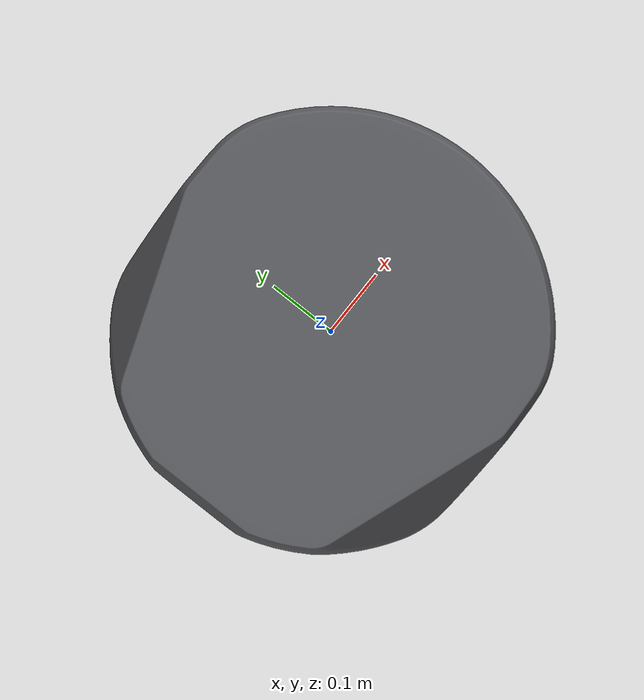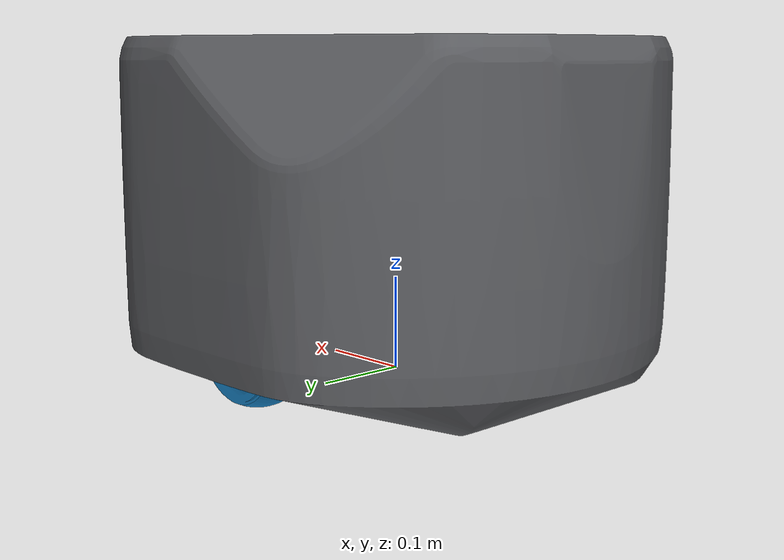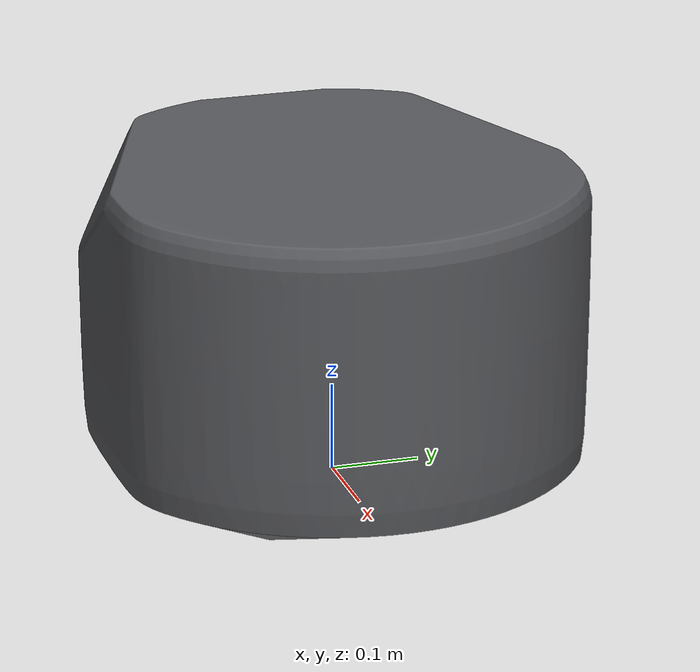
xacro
<?xml version="1.0"?>
<robot name="fetch_base" xmlns:xacro="http://www.ros.org/wiki/xacro">
  <xacro:include filename="$(find fetch_description)/robots/materials.xacro" />
  <xacro:include filename="$(find fetch_description)/robots/inertials.xacro" />

  <property name="pi" value="3.1415926535897931" />
  <property name="zeroes" value="0 0 0" />
  <property name="base_mass" value="70.1294"/>
  <property name="wheel_mass" value="4.3542"/>

 <link name="base_link">
   <xacro:base_inertial/>
    <visual>
      <origin rpy="${zeroes}" xyz="${zeroes}" />
      <geometry>
        <mesh filename="package://fetch_description/meshes/base_link.dae" />
      </geometry>
      <material name="base_color"/>
    </visual>
    <collision>
      <origin rpy="${zeroes}" xyz="${zeroes}" />
      <geometry>
        <mesh filename="package://fetch_description/meshes/base_link_collision.STL" />
      </geometry>
    </collision>
  </link>

 <xacro:macro name="wheels" params="prefix wheel_position parent">
    <link name="${prefix}_wheel_link">
      <xacro:wheel_inertial/>
      <visual>
        <origin xyz="${zeroes}" rpy="${zeroes}" />
        <geometry>
          <mesh filename="package://fetch_description/meshes/${prefix}_wheel_link.STL" />
        </geometry>
        <material name="wheel_color" />
      </visual>
    </link>
    <joint name="${prefix}_wheel_joint" type="continuous">
    <origin rpy="-6.123E-17 0 0" xyz="${wheel_position}" />
    <parent link="${parent}" />
    <child link="${prefix}_wheel_link" />
    <axis xyz="0 1 0" />
  <limit effort="8.85" velocity="17.4" /></joint>
  </xacro:macro>

  <wheels prefix="r"  parent="base_link" wheel_position="0.0012914 -0.18738 0.055325"/>
  <wheels prefix="l"  parent="base_link" wheel_position="0.0012914 0.18738 0.055325"/>

</robot>

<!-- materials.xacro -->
<robot>
  <material name="base_color">
    <color rgba="0.356 0.361 0.376 1" />
  </material>
  <material name="wheel_color">
    <color rgba="0.086 0.506 0.767 1" />
  </material>
  <material name="fetch_black">
    <color rgba="1 1 1 1" />
  </material>
  <material name="fetch_white">
    <color rgba="0.086 0.506 0.767 1" />
  </material>
  <material name="fetch_gripper_color">
        <color rgba="0.356 0.361 0.376 1" />
  </material>
</robot>

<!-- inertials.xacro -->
<robot xmlns:xacro="http://www.ros.org/wiki/xacro">

   <property name="shoulder_pan_mass" value="2.5587"/>
   <property name="shoulder_lift_mass" value="2.6615"/>
   <property name="upperarm_roll_mass" value="2.3311"/>
   <property name="elbow_flex_mass" value="2.1299"/>
   <property name="forearm_roll_mass" value="1.6563"/>
   <property name="wrist_flex_mass" value="1.725"/>
   <property name="gripper_mass" value="1.5175"/>
   <property name="r_gripper_finger_mass" value="0.0798"/>
   <property name="l_gripper_finger_mass" value="0.0798"/>

   <!--Base Inertials-->
   <xacro:macro name="base_inertial">
     <inertial>
      <origin rpy="${zeroes}" xyz="-0.0036 0.0 0.0014" />
      <mass value="${base_mass}" />
      <inertia ixx="1.225" ixy="0.0099" ixz="0.0062" iyy="1.2853" iyz="-0.0034" izz="0.987" />
    </inertial>
    </xacro:macro>

   <xacro:macro name="wheel_inertial">
     <inertial>
      <origin rpy="${zeroes}" xyz="${zeroes}" />
       <mass value="${wheel_mass}" />
      <inertia ixx="0.0045" ixy="0" ixz="0" iyy="0.005" iyz="0" izz="0.0045" />
    </inertial>
    </xacro:macro>

  <!--Arm Inertials-->
   <xacro:macro name="shoulder_lift_inertial">
     <inertial>
      <origin rpy="${zeroes}" xyz="0.0927 -0.0056 0.0564" />
      <mass value="${shoulder_lift_mass}" />
      <inertia ixx="0.0043" ixy="-0.0001" ixz="0.001" iyy="0.0087" iyz="-0.0001" izz="0.0087" />
    </inertial>
    </xacro:macro>

   <xacro:macro name="shoulder_pan_inertial">
     <inertial>
      <origin rpy="${zeroes}" xyz="0.1432 0.0072 -0.0001" />
      <mass value="${shoulder_lift_mass}" />
      <inertia ixx="0.0028" ixy="-0.0021" ixz="-0.0" iyy="0.0111" iyz="-0.0" izz="0.0112" />
    </inertial>
    </xacro:macro>

   <xacro:macro name="upperarm_roll_inertial">
     <inertial>
      <origin rpy="${zeroes}" xyz="0.1165 0.0014 0.0000" />
      <mass value="${upperarm_roll_mass}" />
      <inertia ixx="0.0019" ixy="-0.0001" ixz="0.0" iyy="0.0045" iyz="0.0" izz="0.0047" />
    </inertial>
    </xacro:macro>

   <xacro:macro name="elbow_flex_inertial">
    <inertial>
      <origin rpy="${zeroes}" xyz="0.1279 0.0073 0.0000" />
      <mass value="${elbow_flex_mass}" />
      <inertia ixx="0.0024" ixy="-0.0016" ixz="0.0" iyy="0.0082" iyz="-0.0" izz="0.0084" />
    </inertial>
    </xacro:macro>

  <xacro:macro name="forearm_roll_inertial">
    <inertial>
      <origin rpy="${zeroes}" xyz="0.1097 -0.0266 0.0000" />
      <mass value="${forearm_roll_mass}" />
      <inertia ixx="0.0016" ixy="-0.0003" ixz="0.0" iyy="0.003" iyz="-0.0" izz="0.0035" />
    </inertial>
    </xacro:macro>

  <xacro:macro name="wrist_flex_inertial">
    <inertial>
      <origin rpy="${zeroes}" xyz="0.0882 0.0009 -0.0001" />
      <mass value="${wrist_flex_mass}" />
      <inertia ixx="0.0018" ixy="-0.0001" ixz="-0.0" iyy="0.0042" iyz="0.0" izz="0.0042" />
    </inertial>
    </xacro:macro>

  <xacro:macro name="wrist_roll_inertial">
  <inertial>
      <origin rpy="${zeroes}" xyz="0.0095 0.0004 -0.0002" />
      <mass value="0.1354" />
      <inertia ixx="0.0001" ixy="0.0" ixz="0.0" iyy="0.0001" iyz="0.0" izz="0.0001" />
    </inertial>
  </xacro:macro>

  <!--Gripper Inertials-->
  <xacro:macro name="gripper_inertial">
  <inertial>
      <origin rpy="${zeroes}" xyz="-0.0900 -0.0001 -0.0017" />
      <mass value="${gripper_mass}" />
      <inertia ixx="0.0013" ixy="-0.0" ixz="0.0" iyy="0.0019" iyz="-0.0" izz="0.0024" />
    </inertial>
  </xacro:macro>

  <xacro:macro name="r_gripper_finger_inertial">
  <inertial>
      <origin rpy="${zeroes}" xyz="-0.01 0 0" />
      <mass value="${r_gripper_finger_mass}" />
      <inertia ixx="0.002" ixy="0" ixz="0" iyy="0" iyz="0" izz="0" />
    </inertial>
  </xacro:macro>

  <xacro:macro name="l_gripper_finger_inertial">
  <inertial>
      <origin rpy="${zeroes}" xyz="-0.01 0 0" />
      <mass value="${l_gripper_finger_mass}" />
      <inertia ixx="0.002" ixy="0" ixz="0" iyy="0" iyz="0" izz="0" />
    </inertial>
  </xacro:macro>
</robot>
